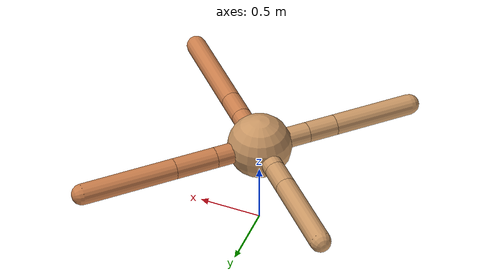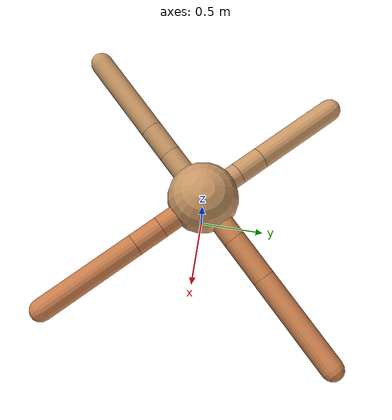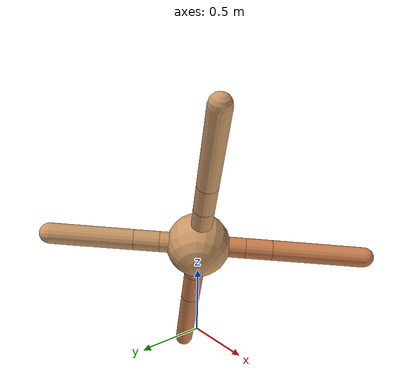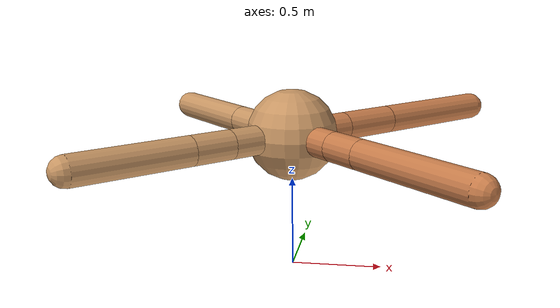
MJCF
<mujoco model="ant">
  <compiler angle="degree" coordinate="local" inertiafromgeom="true" />
  <option integrator="RK4" timestep="0.01" />
  <custom>
    <numeric data="0.0 0.0 0.55 1.0 0.0 0.0 0.0 0.0 1.0 0.0 -1.0 0.0 -1.0 0.0 1.0" name="init_qpos" />
  </custom>
  <default>
    <joint armature="1" damping="1" limited="true" />
    <geom conaffinity="0" condim="3" density="5.0" friction="1.5 0.1 0.1" margin="0.01" rgba="0.8 0.6 0.4 1" />
  </default>
  <worldbody>
    <body name="torso" pos="0 0 0.75">
      <geom name="torso_geom" pos="0 0 0" size="0.25" type="sphere" />

      <body name="front_left_leg" pos="0 0 0">
        <geom fromto="0.0 0.0 0.0 0.25841146539668 0.25841146539668 0.0" name="aux_1_geom" size="0.08" type="capsule" rgba=".8 .5 .3 1" />
        <body name="aux_1" pos="0.25841146539668 0.25841146539668 0.0">
          <joint axis="0 0 1" name="hip_1" pos="0.0 0.0 0.0" range="-40 40" type="hinge" />
          <geom fromto="0.0 0.0 0.0 0.23372420376287215 0.23372420376287215 0.0" name="left_leg_geom" size="0.08" type="capsule" rgba=".8 .5 .3 1" />
          <body pos="0.23372420376287215 0.23372420376287215 0.0" name="front_left_foot">
            <joint axis="-1 1 0" name="ankle_1" pos="0.0 0.0 0.0" range="30 100" type="hinge" />
            <geom fromto="0.0 0.0 0.0 0.519831184635844 0.519831184635844 0.0" name="left_ankle_geom" size="0.08" type="capsule" rgba=".8 .5 .3 1" />
          </body>
        </body>
      </body>
      <body name="front_right_leg" pos="0 0 0">
        <geom fromto="0.0 0.0 0.0 -0.2147245515757572 0.2147245515757572 0.0" name="aux_2_geom" size="0.08" type="capsule" />
        <body name="aux_2" pos="-0.2147245515757572 0.2147245515757572 0.0">
          <joint axis="0 0 1" name="hip_2" pos="0.0 0.0 0.0" range="-40 40" type="hinge" />
          <geom fromto="0.0 0.0 0.0 -0.1400844465154872 0.1400844465154872 0.0" name="right_leg_geom" size="0.08" type="capsule" />
          <body pos="-0.1400844465154872 0.1400844465154872 0.0" name="front_right_foot">
            <joint axis="1 1 0" name="ankle_2" pos="0.0 0.0 0.0" range="-100 -30" type="hinge" />
            <geom fromto="0.0 0.0 0.0 -0.44436646822827247 0.44436646822827247 0.0" name="right_ankle_geom" size="0.08" type="capsule" />
          </body>
        </body>
      </body>
      <body name="left_back_leg" pos="0 0 0">
        <geom fromto="0.0 0.0 0.0 -0.28072664437261113 -0.28072664437261113 0.0" name="aux_3_geom" size="0.08" type="capsule" />
        <body name="aux_3" pos="-0.28072664437261113 -0.28072664437261113 0.0">
          <joint axis="0 0 1" name="hip_3" pos="0.0 0.0 0.0" range="-40 40" type="hinge" />
          <geom fromto="0.0 0.0 0.0 -0.16278059863358363 -0.16278059863358363 0.0" name="back_leg_geom" size="0.08" type="capsule" />
          <body pos="-0.16278059863358363 -0.16278059863358363 0.0" name="left_back_foot">
            <joint axis="-1 1 0" name="ankle_3" pos="0.0 0.0 0.0" range="-100 -30" type="hinge" />
            <geom fromto="0.0 0.0 0.0 -0.4560936815883938 -0.4560936815883938 0.0" name="third_ankle_geom" size="0.08" type="capsule" />
          </body>
        </body>
      </body>
      <body name="right_back_leg" pos="0 0 0">
        <geom fromto="0.0 0.0 0.0 0.2570358994235397 -0.2570358994235397 0.0" name="aux_4_geom" size="0.08" type="capsule" rgba=".8 .5 .3 1" />
        <body name="aux_4" pos="0.2570358994235397 -0.2570358994235397 0.0">
          <joint axis="0 0 1" name="hip_4" pos="0.0 0.0 0.0" range="-40 40" type="hinge" />
          <geom fromto="0.0 0.0 0.0 0.14969741536411213 -0.14969741536411213 0.0" name="rightback_leg_geom" size="0.08" type="capsule" rgba=".8 .5 .3 1" />
          <body pos="0.14969741536411213 -0.14969741536411213 0.0" name="right_back_foot">
            <joint axis="1 1 0" name="ankle_4" pos="0.0 0.0 0.0" range="30 100" type="hinge" />
            <geom fromto="0.0 0.0 0.0 0.5357106371567609 -0.5357106371567609 0.0" name="fourth_ankle_geom" size="0.08" type="capsule" rgba=".8 .5 .3 1" />
          </body>
        </body>
      </body>
    </body>
  </worldbody>
  <actuator>
    <motor ctrllimited="true" ctrlrange="-1.0 1.0" joint="hip_4" gear="150" />
    <motor ctrllimited="true" ctrlrange="-1.0 1.0" joint="ankle_4" gear="150" />
    <motor ctrllimited="true" ctrlrange="-1.0 1.0" joint="hip_1" gear="150" />
    <motor ctrllimited="true" ctrlrange="-1.0 1.0" joint="ankle_1" gear="150" />
    <motor ctrllimited="true" ctrlrange="-1.0 1.0" joint="hip_2" gear="150" />
    <motor ctrllimited="true" ctrlrange="-1.0 1.0" joint="ankle_2" gear="150" />
    <motor ctrllimited="true" ctrlrange="-1.0 1.0" joint="hip_3" gear="150" />
    <motor ctrllimited="true" ctrlrange="-1.0 1.0" joint="ankle_3" gear="150" />
  </actuator>
</mujoco>
